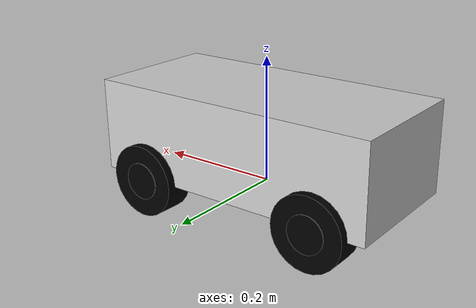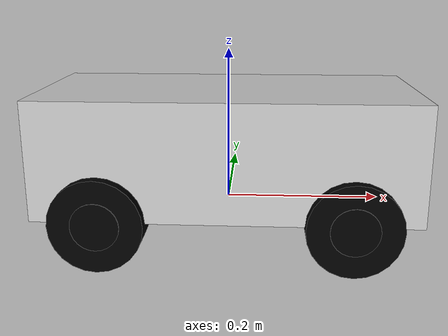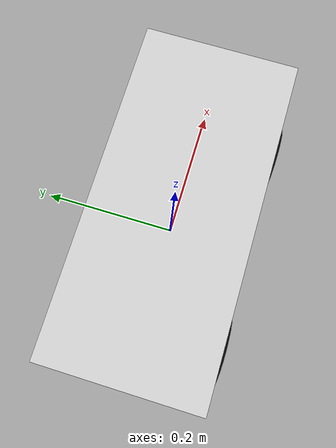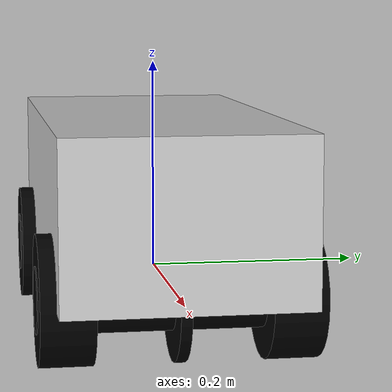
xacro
<?xml version="1.0" encoding="utf-8"?>

<robot xmlns:xacro="http://www.ros.org/wiki/xacro" name="trxbewi_urdf">

  <!-- parameters -->
  <xacro:arg name="use_simulation" default="false" />
  <xacro:arg name="use_controllers" default="true" />

 <!-- Import Common properties-->
  <xacro:include filename="$(find trxbewi_description)/urdf/common_properties.xacro" />

  <!-- Import trxbewi mobile base -->
  <xacro:include filename="$(find trxbewi_description)/urdf/mobile_base.xacro" />

  <!-- Import controller manager and hardware interfaces -->
  <xacro:if value="$(arg use_controllers)">
    <xacro:include filename="$(find trxbewi_control)/xacro/trxbewi.ros2_control.xacro" />
  </xacro:if>

  <!-- Import if use simulation -->
  <xacro:if value="$(arg use_simulation)">
    <xacro:include filename="$(find trxbewi_simulation)/xacro/trxbewi.gazebo.xacro" />
  </xacro:if>

  <link name="base_link">
    <visual>
      <geometry>
          <box size="0.001 0.001 0.001" />
      </geometry>
    </visual>
    <collision>
        <geometry>
            <box size="0.001 0.001 0.001" />
        </geometry>
    </collision>
    <xacro:sphere_inertia m="0.0001" r="0.001"
    xyz="0 0 0" rpy="0 0 0" />
  </link>

</robot>

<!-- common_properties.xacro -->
<robot xmlns:xacro="http://www.ros.org/wiki/xacro">

    <xacro:property name="gazebo_drift_factor" value="1" />

    <material name="silver">
        <color rgba="0.700 0.700 0.700 1.000" />
    </material>
    <material name="black">
        <color rgba="0 0 0 1" />
    </material>
    <material name="grey">
        <color rgba="0.8 0.8 0.8 1" />
    </material>
    <material name="orange">
        <color rgba="1 0.6 0 1" />
    </material>
    <material name="blue">
        <color rgba="0 0 1 1" />
    </material>
    <material name="green">
        <color rgba="0 1 0 1" />
    </material>
    <material name="white">
        <color rgba="1 1 1 1" />
    </material>
    <material name="red">
        <color rgba="1 0 0 1" />
    </material>
    <material name="invisible">
        <color rgba="0.0 0.0 0.0 0.0"/>
    </material>

    <xacro:macro name="box_inertia" params="m l w h xyz rpy">
        <inertial>
            <origin xyz="${xyz}" rpy="${rpy}" />
            <mass value="${m}" />
            <inertia ixx="${(m/12) * (h*h + l*l)}" ixy="0" ixz="0"
                iyy="${(m/12) * (w*w + l*l)}" iyz="0"
                izz="${(m/12) * (w*w + h*h)}" />
        </inertial>
    </xacro:macro>

    <xacro:macro name="cylinder_inertia" params="m r h xyz rpy">
        <inertial>
            <origin xyz="${xyz}" rpy="${rpy}" />
            <mass value="${m}" />
            <inertia ixx="${(m/12) * (3*r*r + h*h)}" ixy="0" ixz="0"
                iyy="${(m/12) * (3*r*r + h*h)}" iyz="0"
                izz="${(m/2) * (r*r)}" />
        </inertial>
    </xacro:macro>

    <xacro:macro name="sphere_inertia" params="m r xyz rpy">
        <inertial>
            <origin xyz="${xyz}" rpy="${rpy}" />
            <mass value="${m}" />
            <inertia ixx="${(2/5) * m * r * r}" ixy="0" ixz="0"
                iyy="${(2/5) * m * r * r}" iyz="0"
                izz="${(2/5) * m * r * r}" />
        </inertial>
    </xacro:macro>

</robot>

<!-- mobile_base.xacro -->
<robot name="trx4" xmlns:xacro="http://www.ros.org/wiki/xacro">

    <!-- Propriétés générales -->
    <xacro:property name="wheel_radius" value="0.0585" />
    <xacro:property name="wheel_length" value="0.048" />
    <xacro:property name="chassis_length" value="0.48" />
    <xacro:property name="chassis_width" value="0.22" />
    <xacro:property name="chassis_height" value="0.15" />
    <xacro:property name="axle_radius" value="0.03" />
    <xacro:property name="axle_length" value="0.20" />
    <xacro:property name="wheelbase" value="0.31" />
    <xacro:property name="suspension_travel" value="0.02" />

    <xacro:macro name="axle" params="name radius length mass color origin_x origin_y origin_z">
        <link name="${name}_axle_link">
            <visual>
                <geometry>
                    <cylinder radius="${radius}" length="${length}" />
                </geometry>
                <origin xyz="0 0 0" rpy="${pi / 2.0} 0 0" />
                <material name="${color}" />
            </visual>
            <collision>
                <geometry>
                    <cylinder radius="${radius}" length="${length}" />
                </geometry>
                <origin xyz="0 0 0" rpy="${pi / 2.0} 0 0" />
            </collision>
            <inertial>
                <mass value="${mass}" />
                <origin xyz="0 0 0" rpy="${pi / 2.0} 0 0" />
                <inertia ixx="0.01" iyy="0.01" izz="0.01" ixy="0" ixz="0" iyz="0" />
            </inertial>
        </link>

        <joint name="${name}_axle_joint" type="fixed">
            <parent link="base_link" />
            <child link="${name}_axle_link" />
            <origin xyz="${origin_x} ${origin_y} ${origin_z}" rpy="0 0 0" />
            <axis xyz="1 0 0" />
            <limit effort="10.0" lower="-0.5" upper="0.5" velocity="1.0" />
            <dynamics damping="0.2"/>
        </joint>
    </xacro:macro>

    <xacro:macro name="spindle" params="name radius length mass color origin_x origin_y origin_z">

        <link name="${name}_spindle_link">
            <visual>
                <geometry>
                    <cylinder radius="${radius}" length="${length}" />
                </geometry>
                <origin xyz="0 0 0" rpy="0 0 0" />
                <material name="${color}" />
            </visual>
            <collision>
                <geometry>
                    <cylinder radius="${radius}" length="${length}" />
                </geometry>
                <origin xyz="0 0 0" rpy="0 0 0" />
            </collision>
            <inertial>
                <mass value="${mass}" />
                <origin xyz="0 0 0" rpy="0 0 0" />
                <inertia ixx="0.001" iyy="0.001" izz="0.001" ixy="0" ixz="0" iyz="0" />
            </inertial>
        </link>

        <joint name="${name}_steering_joint" type="fixed">
            <parent link="front_axle_link" />
            <child link="${name}_spindle_link" />
            <origin xyz="${origin_x} ${origin_y} ${origin_z}" rpy="0 0 0" />
            <axis xyz="0 0 1" />
            <limit effort="10.0" lower="-0.5" upper="0.5" velocity="1.0" />
        </joint>

    </xacro:macro>

    <xacro:macro name="wheel" params="name radius length mass color origin_x origin_y origin_z">
        <xacro:if value="${name == 'left_front'}">
            <xacro:property name="position" value="front" />
        </xacro:if>
        <xacro:if value="${name == 'right_front'}">
            <xacro:property name="position" value="front" />
        </xacro:if>
        <xacro:if value="${name == 'left_rear'}">
            <xacro:property name="position" value="rear" />
        </xacro:if>
        <xacro:if value="${name == 'right_rear'}">
            <xacro:property name="position" value="rear" />
        </xacro:if>

        <link name="${name}_wheel_link">
            <visual>
                <geometry>
                    <cylinder radius="${radius}" length="${length}" />
                </geometry>
                <origin xyz="0 0 0" rpy="${pi / 2.0} 0 0" />
                <material name="${color}" />
            </visual>
            <collision>
                <geometry>
                    <cylinder radius="${radius}" length="${length}" />
                </geometry>
                <origin xyz="0 0 0" rpy="${pi / 2.0} 0 0" />
            </collision>
            <inertial>
                <mass value="${mass}" />
                <origin xyz="0 0 0" rpy="${pi / 2.0} 0 0" />
                <inertia ixx="0.001" iyy="0.001" izz="0.001" ixy="0" ixz="0" iyz="0" />
            </inertial>
        </link>

        <xacro:if value="${position == 'front'}">
        <joint name="${name}_rotation_joint" type="fixed">
            <parent link="${name}_spindle_link" />
            <child link="${name}_wheel_link" />
            <origin xyz="${origin_x} ${origin_y} ${origin_z}" rpy="0 0 0" />
            <axis xyz="0 1 0" />
        </joint>
        </xacro:if>

        <xacro:if value="${position == 'rear'}">
        <joint name="${name}_rotation_joint" type="fixed">
            <parent link="virtual_throttle" />
            <child link="${name}_wheel_link" />
            <origin xyz="${origin_x} ${origin_y} ${origin_z}" rpy="0 0 0" />
        </joint>
        </xacro:if>

    </xacro:macro>

    <!-- Châssis principal -->
    <link name="chassis_link">
        <visual>
            <geometry>
                <box size="${chassis_length} ${chassis_width} ${chassis_height}" />
            </geometry>
            <origin xyz="0 0 ${chassis_height / 2}" rpy="0 0 0" />
            <material name="grey" />
        </visual>
        <collision>
            <geometry>
                <box size="${chassis_length} ${chassis_width} ${chassis_height}" />
            </geometry>
            <origin xyz="0 0 ${chassis_height / 2}" rpy="0 0 0" />
        </collision>
        <inertial>
            <mass value="5.0" />
            <origin xyz="0 0 ${chassis_height / 2}" rpy="0 0 0" />
            <inertia ixx="0.1" iyy="0.1" izz="0.1" ixy="0" ixz="0" iyz="0" />
        </inertial>
    </link>

   <!-- Joint entre le châssis et la caisse -->
    <joint name="base_chassis_joint" type="fixed">
        <parent link="base_link" />
        <child link="chassis_link" />
        <origin xyz="0 0 0" rpy="0 0 0" />
        <axis xyz="0 0 0" />
    </joint>

    <link name="virtual_steering">
        <visual>
            <origin xyz="0 0 0" rpy="${pi / 2} 0 0"/>
            <geometry>
                <cylinder length="0.01" radius="${wheel_radius}"/>
            </geometry>
            <material name="black"/>
        </visual>
        <inertial>
            <mass value="0.001"/>
            <origin xyz="0 0 0"/>
            <inertia ixx="0.001" ixy="0" ixz="0" iyy="0.001" iyz="0" izz="0.001"/>
        </inertial>
    </link>

    <joint name="virtual_steering_joint" type="revolute">
        <parent link="front_axle_link"/>
        <child link="virtual_steering"/>
        <origin xyz="0 0 0" rpy="0 0 0"/>
        <axis xyz="0 0 1"/>
        <limit lower="-0.4" upper="0.4" effort="10.0" velocity="0.0"/>
        <dynamics damping="0.2"/>
    </joint>

    <link name="virtual_throttle">
        <visual>
            <origin xyz="0 0 0" rpy="${pi / 2} 0 0"/>
            <geometry>
                <cylinder length="0.01" radius="${wheel_radius}"/>
            </geometry>
            <material name="black"/>
        </visual>
        <inertial>
            <mass value="0.001"/>
            <origin xyz="0 0 0"/>
            <inertia ixx="0.001" ixy="0" ixz="0" iyy="0.001" iyz="0" izz="0.001"/>
        </inertial>
    </link>

    <joint name="virtual_throttle_joint" type="continuous">
        <parent link="rear_axle_link"/>
        <child link="virtual_throttle"/>
        <origin xyz="0 0 0" rpy="0 0 0"/>
        <axis xyz="0 1 0"/>
        <limit effort="10.0" velocity="10.0"/>
        <dynamics damping="0.2"/>
    </joint>

    <xacro:axle name="front" radius="0.03" length="0.25" mass="1.0" color="black" origin_x="${wheelbase / 2}" origin_y="0" origin_z="0" />
    <xacro:axle name="rear" radius="0.03" length="0.25" mass="1.0" color="black" origin_x="-${wheelbase / 2}" origin_y="0" origin_z="0" />

    <xacro:spindle name="right_front" radius="0.015" length="0.04" mass="0.2" color="grey" origin_x="0" origin_y="${axle_length / 2}"  origin_z="0" />
    <xacro:spindle name="left_front" radius="0.015" length="0.04" mass="0.2" color="grey" origin_x="0" origin_y="-${axle_length / 2}"  origin_z="0" />

    <xacro:wheel name="right_front" radius="${wheel_radius}" length="${wheel_length}" mass="0.5" color="black" origin_x="0" origin_y="0" origin_z="0" />
    <xacro:wheel name="left_front" radius="${wheel_radius}" length="${wheel_length}" mass="0.5" color="black" origin_x="0" origin_y="0" origin_z="0" />
    <xacro:wheel name="right_rear" radius="${wheel_radius}" length="${wheel_length}" mass="0.5" color="black" origin_x="0" origin_y="${axle_length / 2}" origin_z="0" />
    <xacro:wheel name="left_rear" radius="${wheel_radius}" length="${wheel_length}" mass="0.5" color="black" origin_x="0" origin_y="-${axle_length / 2}" origin_z="0" />

</robot>
